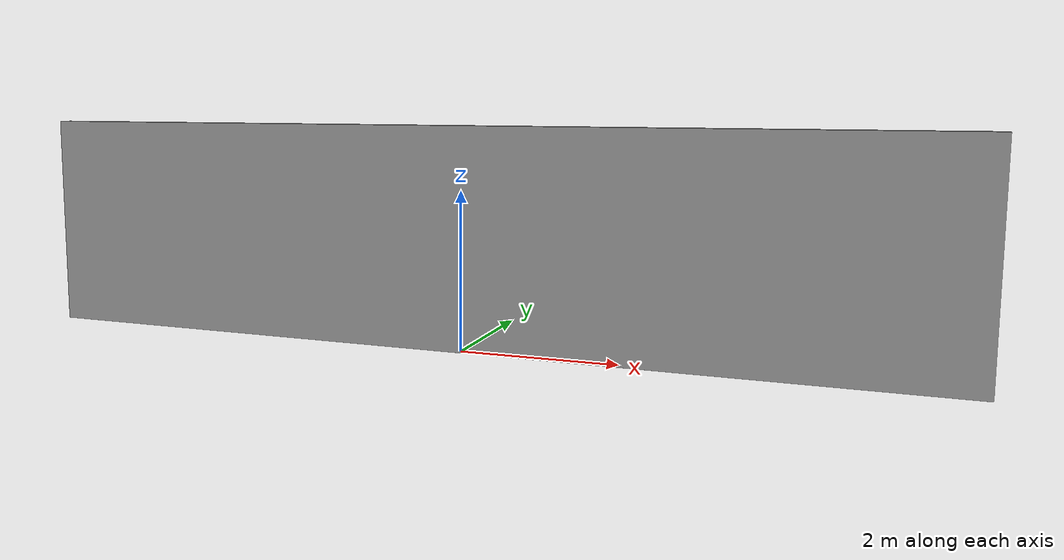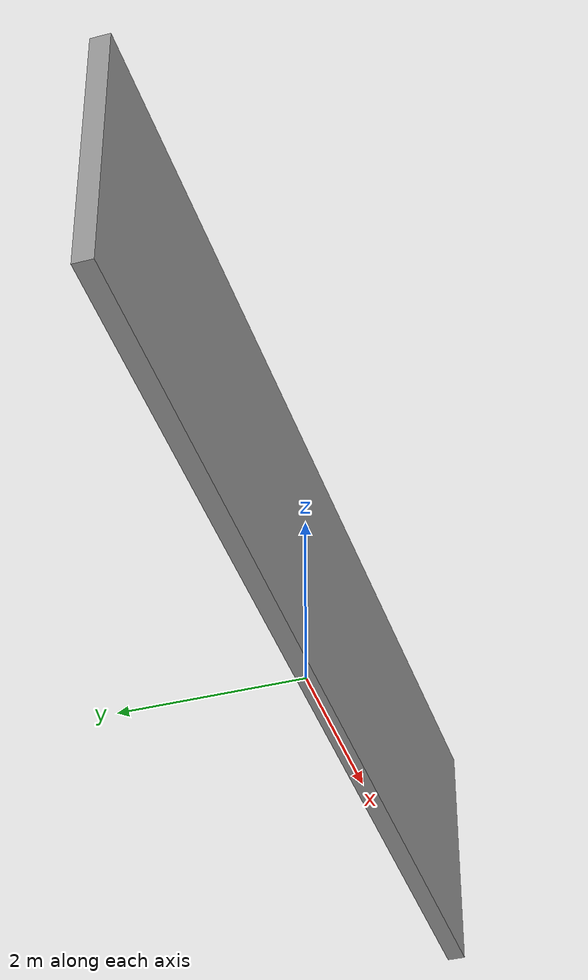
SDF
<?xml version="1.0" ?>
<sdf version="1.5">
  <model name="grey_wall">
    <static>true</static>
    <link name="link">
      <pose>0 0 1.4 0 0 0</pose>
      <collision name="collision">
        <geometry>
          <box>
            <size>12 0.2 2.8</size>
          </box>
        </geometry>
      </collision>
      <visual name="visual">
        <cast_shadows>false</cast_shadows>
        <geometry>
          <box>
            <size>12 0.2 2.8</size>
          </box>
        </geometry>
        <material>
          <script>
            <uri>model://w4/materials/scripts</uri>
            <uri>model://w4/materials/textures</uri>
            <name>vrc/grey_wall</name>
          </script>
        </material>
      </visual>
    </link>
  </model>
</sdf>
